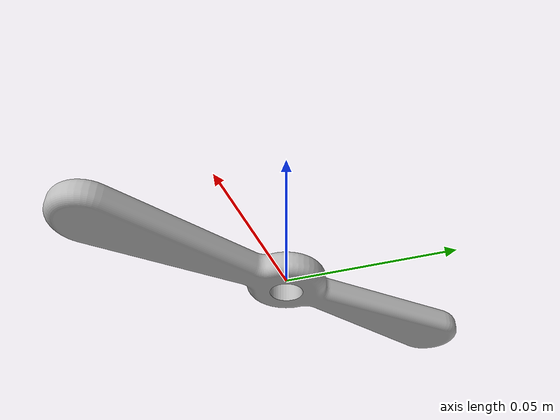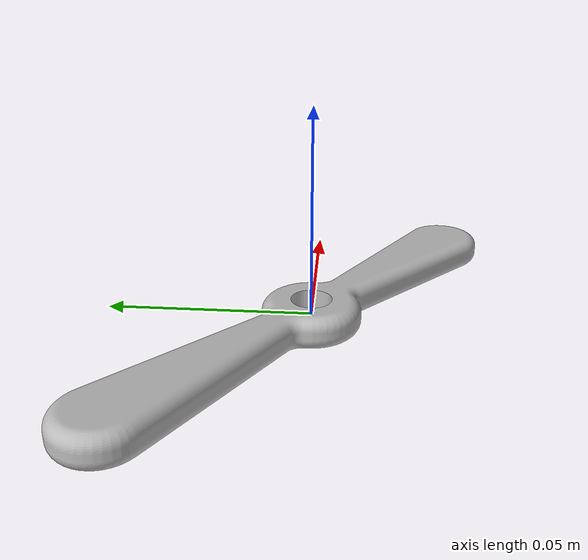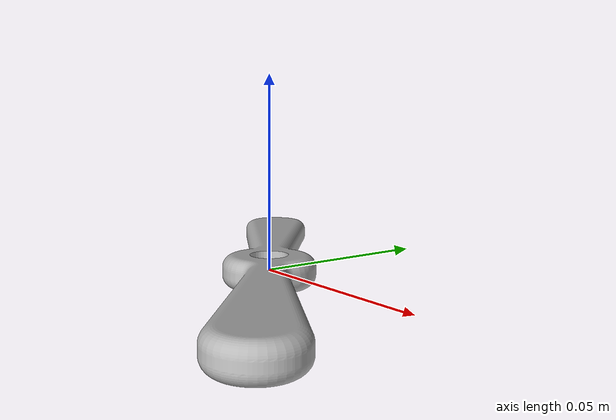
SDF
<?xml version="1.0" ?>
<sdf version="1.6">
  <model name="5)Propeller">
    <static>true</static>
    <link name="link">
      <collision name="collision">
        <geometry>
          <mesh>
            <scale>0.001 0.001 0.001</scale>
            <uri>model://5)Propeller/5)Propeller.stl</uri>
          </mesh>
        </geometry>
      </collision>
      <visual name="visual">
        <geometry>
          <mesh>
            <scale>0.001 0.001 0.001</scale>
            <uri>model://5)Propeller/5)Propeller.dae</uri>
          </mesh>
        </geometry>
      </visual>
    </link>
  </model>
</sdf>
